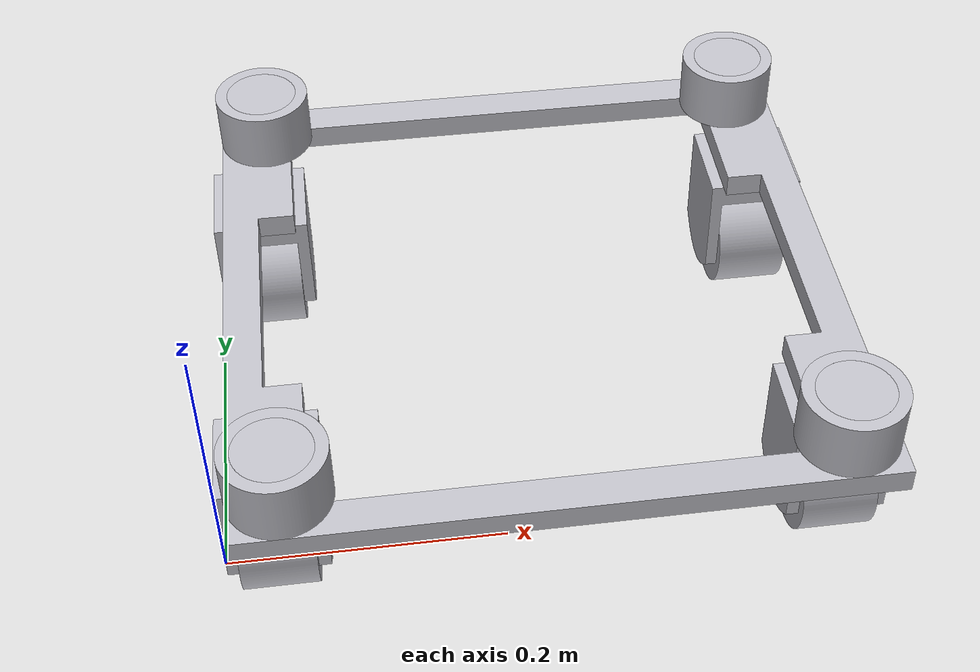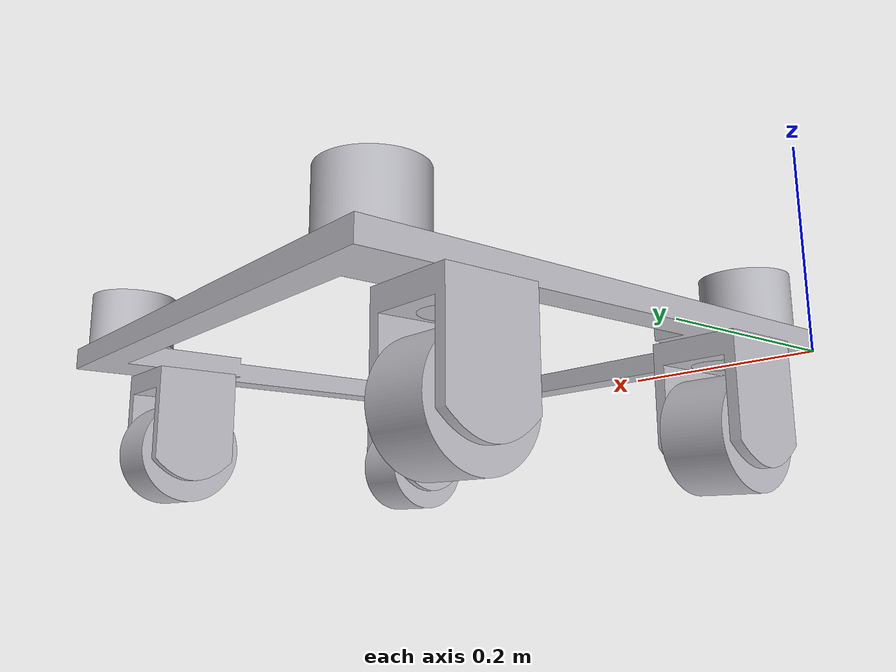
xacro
<?xml version="1.0" ?>
<robot name="(Unsaved)" xmlns:xacro="http://www.ros.org/wiki/xacro">

<xacro:include filename="$(find (Unsaved)_description)/urdf/materials.xacro" />
<xacro:include filename="$(find (Unsaved)_description)/urdf/(Unsaved).trans" />
<xacro:include filename="$(find (Unsaved)_description)/urdf/(Unsaved).gazebo" />
<link name="base_link">
  <inertial>
    <origin xyz="0.25000000000019557 0.24999999999999992 0.008002902975586378" rpy="0 0 0"/>
    <mass value="12.348675116534034"/>
    <inertia ixx="0.416714" iyy="0.483241" izz="0.898244" ixy="0.0" iyz="-0.0" ixz="0.0"/>
  </inertial>
  <visual>
    <origin xyz="0 0 0" rpy="0 0 0"/>
    <geometry>
      <mesh filename="package://(Unsaved)_description/meshes/base_link.stl" scale="0.001 0.001 0.001"/>
    </geometry>
    <material name="silver"/>
  </visual>
  <collision>
    <origin xyz="0 0 0" rpy="0 0 0"/>
    <geometry>
      <mesh filename="package://(Unsaved)_description/meshes/base_link.stl" scale="0.001 0.001 0.001"/>
    </geometry>
  </collision>
</link>

<link name="J1_1_1">
  <inertial>
    <origin xyz="7.810161864463261e-09 3.176972616925067e-08 -0.057975825376308965" rpy="0 0 0"/>
    <mass value="3.07492402154736"/>
    <inertia ixx="0.004522" iyy="0.00539" izz="0.003488" ixy="-0.0" iyz="0.0" ixz="0.0"/>
  </inertial>
  <visual>
    <origin xyz="-0.03 -0.1 -0.0" rpy="0 0 0"/>
    <geometry>
      <mesh filename="package://(Unsaved)_description/meshes/J1_1_1.stl" scale="0.001 0.001 0.001"/>
    </geometry>
    <material name="silver"/>
  </visual>
  <collision>
    <origin xyz="-0.03 -0.1 -0.0" rpy="0 0 0"/>
    <geometry>
      <mesh filename="package://(Unsaved)_description/meshes/J1_1_1.stl" scale="0.001 0.001 0.001"/>
    </geometry>
  </collision>
</link>

<link name="J2_1_1">
  <inertial>
    <origin xyz="7.810161864463261e-09 3.176903756729743e-08 -0.057975825376308965" rpy="0 0 0"/>
    <mass value="3.074924021547359"/>
    <inertia ixx="0.004522" iyy="0.00539" izz="0.003488" ixy="-0.0" iyz="0.0" ixz="0.0"/>
  </inertial>
  <visual>
    <origin xyz="-0.03 -0.4 -0.0" rpy="0 0 0"/>
    <geometry>
      <mesh filename="package://(Unsaved)_description/meshes/J2_1_1.stl" scale="0.001 0.001 0.001"/>
    </geometry>
    <material name="silver"/>
  </visual>
  <collision>
    <origin xyz="-0.03 -0.4 -0.0" rpy="0 0 0"/>
    <geometry>
      <mesh filename="package://(Unsaved)_description/meshes/J2_1_1.stl" scale="0.001 0.001 0.001"/>
    </geometry>
  </collision>
</link>

<link name="J3_1_1">
  <inertial>
    <origin xyz="7.809152047233425e-09 3.176972616925067e-08 -0.057975825376309006" rpy="0 0 0"/>
    <mass value="3.0749240215473637"/>
    <inertia ixx="0.004522" iyy="0.00539" izz="0.003488" ixy="-0.0" iyz="0.0" ixz="0.0"/>
  </inertial>
  <visual>
    <origin xyz="-0.47 -0.1 -0.0" rpy="0 0 0"/>
    <geometry>
      <mesh filename="package://(Unsaved)_description/meshes/J3_1_1.stl" scale="0.001 0.001 0.001"/>
    </geometry>
    <material name="silver"/>
  </visual>
  <collision>
    <origin xyz="-0.47 -0.1 -0.0" rpy="0 0 0"/>
    <geometry>
      <mesh filename="package://(Unsaved)_description/meshes/J3_1_1.stl" scale="0.001 0.001 0.001"/>
    </geometry>
  </collision>
</link>

<link name="J4_1_1">
  <inertial>
    <origin xyz="7.809151991722274e-09 3.176903756729743e-08 -0.057975825376308986" rpy="0 0 0"/>
    <mass value="3.074924021547362"/>
    <inertia ixx="0.004522" iyy="0.00539" izz="0.003488" ixy="-0.0" iyz="0.0" ixz="0.0"/>
  </inertial>
  <visual>
    <origin xyz="-0.47 -0.4 -0.0" rpy="0 0 0"/>
    <geometry>
      <mesh filename="package://(Unsaved)_description/meshes/J4_1_1.stl" scale="0.001 0.001 0.001"/>
    </geometry>
    <material name="silver"/>
  </visual>
  <collision>
    <origin xyz="-0.47 -0.4 -0.0" rpy="0 0 0"/>
    <geometry>
      <mesh filename="package://(Unsaved)_description/meshes/J4_1_1.stl" scale="0.001 0.001 0.001"/>
    </geometry>
  </collision>
</link>

<link name="W1_1">
  <inertial>
    <origin xyz="0.030000000000000013 0.0 2.7755575615628914e-17" rpy="0 0 0"/>
    <mass value="2.367504223745268"/>
    <inertia ixx="0.004025" iyy="0.002723" izz="0.002723" ixy="-0.0" iyz="0.0" ixz="-0.0"/>
  </inertial>
  <visual>
    <origin xyz="-0.0 -0.1 0.08" rpy="0 0 0"/>
    <geometry>
      <mesh filename="package://(Unsaved)_description/meshes/W1_1.stl" scale="0.001 0.001 0.001"/>
    </geometry>
    <material name="silver"/>
  </visual>
  <collision>
    <origin xyz="-0.0 -0.1 0.08" rpy="0 0 0"/>
    <geometry>
      <mesh filename="package://(Unsaved)_description/meshes/W1_1.stl" scale="0.001 0.001 0.001"/>
    </geometry>
  </collision>
</link>

<link name="W2_1">
  <inertial>
    <origin xyz="0.03 0.0 4.163336342344337e-17" rpy="0 0 0"/>
    <mass value="2.367504223745268"/>
    <inertia ixx="0.004025" iyy="0.002723" izz="0.002723" ixy="-0.0" iyz="-0.0" ixz="-0.0"/>
  </inertial>
  <visual>
    <origin xyz="-0.0 -0.4 0.08" rpy="0 0 0"/>
    <geometry>
      <mesh filename="package://(Unsaved)_description/meshes/W2_1.stl" scale="0.001 0.001 0.001"/>
    </geometry>
    <material name="silver"/>
  </visual>
  <collision>
    <origin xyz="-0.0 -0.4 0.08" rpy="0 0 0"/>
    <geometry>
      <mesh filename="package://(Unsaved)_description/meshes/W2_1.stl" scale="0.001 0.001 0.001"/>
    </geometry>
  </collision>
</link>

<link name="W3_1">
  <inertial>
    <origin xyz="0.02999999999999997 0.0 2.7755575615628914e-17" rpy="0 0 0"/>
    <mass value="2.367504223745268"/>
    <inertia ixx="0.004025" iyy="0.002723" izz="0.002723" ixy="0.0" iyz="0.0" ixz="-0.0"/>
  </inertial>
  <visual>
    <origin xyz="-0.44 -0.1 0.08" rpy="0 0 0"/>
    <geometry>
      <mesh filename="package://(Unsaved)_description/meshes/W3_1.stl" scale="0.001 0.001 0.001"/>
    </geometry>
    <material name="silver"/>
  </visual>
  <collision>
    <origin xyz="-0.44 -0.1 0.08" rpy="0 0 0"/>
    <geometry>
      <mesh filename="package://(Unsaved)_description/meshes/W3_1.stl" scale="0.001 0.001 0.001"/>
    </geometry>
  </collision>
</link>

<link name="W4_1">
  <inertial>
    <origin xyz="0.030000000000000138 0.0 2.7755575615628914e-17" rpy="0 0 0"/>
    <mass value="2.367504223745268"/>
    <inertia ixx="0.004025" iyy="0.002723" izz="0.002723" ixy="0.0" iyz="0.0" ixz="-0.0"/>
  </inertial>
  <visual>
    <origin xyz="-0.44 -0.4 0.08" rpy="0 0 0"/>
    <geometry>
      <mesh filename="package://(Unsaved)_description/meshes/W4_1.stl" scale="0.001 0.001 0.001"/>
    </geometry>
    <material name="silver"/>
  </visual>
  <collision>
    <origin xyz="-0.44 -0.4 0.08" rpy="0 0 0"/>
    <geometry>
      <mesh filename="package://(Unsaved)_description/meshes/W4_1.stl" scale="0.001 0.001 0.001"/>
    </geometry>
  </collision>
</link>

<link name="ACT1_1_1">
  <inertial>
    <origin xyz="0.040000000000000015 0.040000000000000015 0.02500000000000002" rpy="0 0 0"/>
    <mass value="0.8631525815737962"/>
    <inertia ixx="0.000719" iyy="0.000719" izz="0.001079" ixy="0.0" iyz="0.0" ixz="0.0"/>
  </inertial>
  <visual>
    <origin xyz="-0.0 -0.0 -0.02" rpy="0 0 0"/>
    <geometry>
      <mesh filename="package://(Unsaved)_description/meshes/ACT1_1_1.stl" scale="0.001 0.001 0.001"/>
    </geometry>
    <material name="silver"/>
  </visual>
  <collision>
    <origin xyz="-0.0 -0.0 -0.02" rpy="0 0 0"/>
    <geometry>
      <mesh filename="package://(Unsaved)_description/meshes/ACT1_1_1.stl" scale="0.001 0.001 0.001"/>
    </geometry>
  </collision>
</link>

<link name="ACT1_2_1">
  <inertial>
    <origin xyz="-0.039999999999999925 0.039999999999999994 0.025000000000000012" rpy="0 0 0"/>
    <mass value="0.863152581573797"/>
    <inertia ixx="0.000719" iyy="0.000719" izz="0.001079" ixy="0.0" iyz="-0.0" ixz="0.0"/>
  </inertial>
  <visual>
    <origin xyz="-0.5 -0.0 -0.02" rpy="0 0 0"/>
    <geometry>
      <mesh filename="package://(Unsaved)_description/meshes/ACT1_2_1.stl" scale="0.001 0.001 0.001"/>
    </geometry>
    <material name="silver"/>
  </visual>
  <collision>
    <origin xyz="-0.5 -0.0 -0.02" rpy="0 0 0"/>
    <geometry>
      <mesh filename="package://(Unsaved)_description/meshes/ACT1_2_1.stl" scale="0.001 0.001 0.001"/>
    </geometry>
  </collision>
</link>

<link name="ACT1_3_1">
  <inertial>
    <origin xyz="0.04000000000000001 -0.039999999999999925 0.025000000000000033" rpy="0 0 0"/>
    <mass value="0.8631525815737962"/>
    <inertia ixx="0.000719" iyy="0.000719" izz="0.001079" ixy="0.0" iyz="0.0" ixz="0.0"/>
  </inertial>
  <visual>
    <origin xyz="-0.0 -0.5 -0.02" rpy="0 0 0"/>
    <geometry>
      <mesh filename="package://(Unsaved)_description/meshes/ACT1_3_1.stl" scale="0.001 0.001 0.001"/>
    </geometry>
    <material name="silver"/>
  </visual>
  <collision>
    <origin xyz="-0.0 -0.5 -0.02" rpy="0 0 0"/>
    <geometry>
      <mesh filename="package://(Unsaved)_description/meshes/ACT1_3_1.stl" scale="0.001 0.001 0.001"/>
    </geometry>
  </collision>
</link>

<link name="ACT1_4_1">
  <inertial>
    <origin xyz="-0.0399999999999997 -0.03999999999999965 0.025000000000000053" rpy="0 0 0"/>
    <mass value="0.863152581573797"/>
    <inertia ixx="0.000719" iyy="0.000719" izz="0.001079" ixy="0.0" iyz="0.0" ixz="0.0"/>
  </inertial>
  <visual>
    <origin xyz="-0.5 -0.5 -0.02" rpy="0 0 0"/>
    <geometry>
      <mesh filename="package://(Unsaved)_description/meshes/ACT1_4_1.stl" scale="0.001 0.001 0.001"/>
    </geometry>
    <material name="silver"/>
  </visual>
  <collision>
    <origin xyz="-0.5 -0.5 -0.02" rpy="0 0 0"/>
    <geometry>
      <mesh filename="package://(Unsaved)_description/meshes/ACT1_4_1.stl" scale="0.001 0.001 0.001"/>
    </geometry>
  </collision>
</link>

<link name="ACT2_1_1">
  <inertial>
    <origin xyz="-6.938893903907228e-18 0.0 0.024999999999999998" rpy="0 0 0"/>
    <mass value="1.1097676048805951"/>
    <inertia ixx="0.000481" iyy="0.000481" izz="0.000499" ixy="0.0" iyz="-0.0" ixz="0.0"/>
  </inertial>
  <visual>
    <origin xyz="-0.04 -0.04 -0.02" rpy="0 0 0"/>
    <geometry>
      <mesh filename="package://(Unsaved)_description/meshes/ACT2_1_1.stl" scale="0.001 0.001 0.001"/>
    </geometry>
    <material name="silver"/>
  </visual>
  <collision>
    <origin xyz="-0.04 -0.04 -0.02" rpy="0 0 0"/>
    <geometry>
      <mesh filename="package://(Unsaved)_description/meshes/ACT2_1_1.stl" scale="0.001 0.001 0.001"/>
    </geometry>
  </collision>
</link>

<link name="ACT2_2_1">
  <inertial>
    <origin xyz="0.0 -2.0816681711721685e-17 0.024999999999999963" rpy="0 0 0"/>
    <mass value="1.1097676048805951"/>
    <inertia ixx="0.000481" iyy="0.000481" izz="0.000499" ixy="0.0" iyz="0.0" ixz="0.0"/>
  </inertial>
  <visual>
    <origin xyz="-0.46 -0.04 -0.02" rpy="0 0 0"/>
    <geometry>
      <mesh filename="package://(Unsaved)_description/meshes/ACT2_2_1.stl" scale="0.001 0.001 0.001"/>
    </geometry>
    <material name="silver"/>
  </visual>
  <collision>
    <origin xyz="-0.46 -0.04 -0.02" rpy="0 0 0"/>
    <geometry>
      <mesh filename="package://(Unsaved)_description/meshes/ACT2_2_1.stl" scale="0.001 0.001 0.001"/>
    </geometry>
  </collision>
</link>

<link name="ACT2_3_1">
  <inertial>
    <origin xyz="-6.938893903907228e-18 -1.1102230246251565e-16 0.024999999999999998" rpy="0 0 0"/>
    <mass value="1.1097676048805951"/>
    <inertia ixx="0.000481" iyy="0.000481" izz="0.000499" ixy="0.0" iyz="-0.0" ixz="0.0"/>
  </inertial>
  <visual>
    <origin xyz="-0.04 -0.46 -0.02" rpy="0 0 0"/>
    <geometry>
      <mesh filename="package://(Unsaved)_description/meshes/ACT2_3_1.stl" scale="0.001 0.001 0.001"/>
    </geometry>
    <material name="silver"/>
  </visual>
  <collision>
    <origin xyz="-0.04 -0.46 -0.02" rpy="0 0 0"/>
    <geometry>
      <mesh filename="package://(Unsaved)_description/meshes/ACT2_3_1.stl" scale="0.001 0.001 0.001"/>
    </geometry>
  </collision>
</link>

<link name="ACT2_4_1">
  <inertial>
    <origin xyz="-1.6653345369377348e-16 -1.6653345369377348e-16 0.02499999999999993" rpy="0 0 0"/>
    <mass value="1.1097676048805951"/>
    <inertia ixx="0.000481" iyy="0.000481" izz="0.000499" ixy="-0.0" iyz="-0.0" ixz="-0.0"/>
  </inertial>
  <visual>
    <origin xyz="-0.46 -0.46 -0.02" rpy="0 0 0"/>
    <geometry>
      <mesh filename="package://(Unsaved)_description/meshes/ACT2_4_1.stl" scale="0.001 0.001 0.001"/>
    </geometry>
    <material name="silver"/>
  </visual>
  <collision>
    <origin xyz="-0.46 -0.46 -0.02" rpy="0 0 0"/>
    <geometry>
      <mesh filename="package://(Unsaved)_description/meshes/ACT2_4_1.stl" scale="0.001 0.001 0.001"/>
    </geometry>
  </collision>
</link>

<joint name="J1" type="continuous">
  <origin xyz="0.03 0.1 0.0" rpy="0 0 0"/>
  <parent link="base_link"/>
  <child link="J1_1_1"/>
  <axis xyz="0.0 0.0 -1.0"/>
</joint>

<joint name="J2" type="continuous">
  <origin xyz="0.03 0.4 0.0" rpy="0 0 0"/>
  <parent link="base_link"/>
  <child link="J2_1_1"/>
  <axis xyz="0.0 0.0 -1.0"/>
</joint>

<joint name="J3" type="continuous">
  <origin xyz="0.47 0.1 0.0" rpy="0 0 0"/>
  <parent link="base_link"/>
  <child link="J3_1_1"/>
  <axis xyz="0.0 0.0 -1.0"/>
</joint>

<joint name="J4" type="continuous">
  <origin xyz="0.47 0.4 0.0" rpy="0 0 0"/>
  <parent link="base_link"/>
  <child link="J4_1_1"/>
  <axis xyz="0.0 0.0 -1.0"/>
</joint>

<joint name="W1" type="continuous">
  <origin xyz="-0.03 0.0 -0.08" rpy="0 0 0"/>
  <parent link="J1_1_1"/>
  <child link="W1_1"/>
  <axis xyz="1.0 -0.0 0.0"/>
</joint>

<joint name="W2" type="continuous">
  <origin xyz="-0.03 0.0 -0.08" rpy="0 0 0"/>
  <parent link="J2_1_1"/>
  <child link="W2_1"/>
  <axis xyz="1.0 -0.0 0.0"/>
</joint>

<joint name="W3" type="continuous">
  <origin xyz="-0.03 0.0 -0.08" rpy="0 0 0"/>
  <parent link="J3_1_1"/>
  <child link="W3_1"/>
  <axis xyz="1.0 -0.0 0.0"/>
</joint>

<joint name="W4" type="continuous">
  <origin xyz="-0.03 0.0 -0.08" rpy="0 0 0"/>
  <parent link="J4_1_1"/>
  <child link="W4_1"/>
  <axis xyz="1.0 -0.0 0.0"/>
</joint>

<joint name="ACTJ1 1" type="fixed">
  <origin xyz="0.0 0.0 0.02" rpy="0 0 0"/>
  <parent link="base_link"/>
  <child link="ACT1_1_1"/>
</joint>

<joint name="ACTJ1 2" type="fixed">
  <origin xyz="0.5 0.0 0.02" rpy="0 0 0"/>
  <parent link="base_link"/>
  <child link="ACT1_2_1"/>
</joint>

<joint name="ACTJ1 3" type="fixed">
  <origin xyz="0.0 0.5 0.02" rpy="0 0 0"/>
  <parent link="base_link"/>
  <child link="ACT1_3_1"/>
</joint>

<joint name="ACTJ1 4" type="fixed">
  <origin xyz="0.5 0.5 0.02" rpy="0 0 0"/>
  <parent link="base_link"/>
  <child link="ACT1_4_1"/>
</joint>

<joint name="ACTJ2 1" type="prismatic">
  <origin xyz="0.04 0.04 0.0" rpy="0 0 0"/>
  <parent link="ACT1_1_1"/>
  <child link="ACT2_1_1"/>
  <axis xyz="0.0 0.0 1.0"/>
  <limit upper="0.05" lower="0.0" effort="100" velocity="100"/>
</joint>

<joint name="ACTJ2 2" type="prismatic">
  <origin xyz="-0.04 0.04 0.0" rpy="0 0 0"/>
  <parent link="ACT1_2_1"/>
  <child link="ACT2_2_1"/>
  <axis xyz="0.0 0.0 1.0"/>
  <limit upper="0.05" lower="0.0" effort="100" velocity="100"/>
</joint>

<joint name="ACTJ2 3" type="prismatic">
  <origin xyz="0.04 -0.04 0.0" rpy="0 0 0"/>
  <parent link="ACT1_3_1"/>
  <child link="ACT2_3_1"/>
  <axis xyz="0.0 0.0 1.0"/>
  <limit upper="0.05" lower="0.0" effort="100" velocity="100"/>
</joint>

<joint name="ACTJ2 4" type="prismatic">
  <origin xyz="-0.04 -0.04 0.0" rpy="0 0 0"/>
  <parent link="ACT1_4_1"/>
  <child link="ACT2_4_1"/>
  <axis xyz="0.0 0.0 1.0"/>
  <limit upper="0.05" lower="0.0" effort="100" velocity="100"/>
</joint>

</robot>

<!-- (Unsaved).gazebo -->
<robot name="(Unsaved)" xmlns:xacro="http://www.ros.org/wiki/xacro" >

<xacro:property name="body_color" value="Gazebo/Silver" />

<gazebo>
  <plugin name="control" filename="libgazebo_ros_control.so"/>
</gazebo>
<gazebo reference="base_link">
  <material>${body_color}</material>
  <mu1>0.2</mu1>
  <mu2>0.2</mu2>
  <selfCollide>true</selfCollide>
  <gravity>true</gravity>
</gazebo>

<gazebo reference="J1_1_1">
  <material>${body_color}</material>
  <mu1>0.2</mu1>
  <mu2>0.2</mu2>
  <selfCollide>true</selfCollide>
</gazebo>

<gazebo reference="J2_1_1">
  <material>${body_color}</material>
  <mu1>0.2</mu1>
  <mu2>0.2</mu2>
  <selfCollide>true</selfCollide>
</gazebo>

<gazebo reference="J3_1_1">
  <material>${body_color}</material>
  <mu1>0.2</mu1>
  <mu2>0.2</mu2>
  <selfCollide>true</selfCollide>
</gazebo>

<gazebo reference="J4_1_1">
  <material>${body_color}</material>
  <mu1>0.2</mu1>
  <mu2>0.2</mu2>
  <selfCollide>true</selfCollide>
</gazebo>

<gazebo reference="W1_1">
  <material>${body_color}</material>
  <mu1>0.2</mu1>
  <mu2>0.2</mu2>
  <selfCollide>true</selfCollide>
</gazebo>

<gazebo reference="W2_1">
  <material>${body_color}</material>
  <mu1>0.2</mu1>
  <mu2>0.2</mu2>
  <selfCollide>true</selfCollide>
</gazebo>

<gazebo reference="W3_1">
  <material>${body_color}</material>
  <mu1>0.2</mu1>
  <mu2>0.2</mu2>
  <selfCollide>true</selfCollide>
</gazebo>

<gazebo reference="W4_1">
  <material>${body_color}</material>
  <mu1>0.2</mu1>
  <mu2>0.2</mu2>
  <selfCollide>true</selfCollide>
</gazebo>

<gazebo reference="ACT1_1_1">
  <material>${body_color}</material>
  <mu1>0.2</mu1>
  <mu2>0.2</mu2>
  <selfCollide>true</selfCollide>
</gazebo>

<gazebo reference="ACT1_2_1">
  <material>${body_color}</material>
  <mu1>0.2</mu1>
  <mu2>0.2</mu2>
  <selfCollide>true</selfCollide>
</gazebo>

<gazebo reference="ACT1_3_1">
  <material>${body_color}</material>
  <mu1>0.2</mu1>
  <mu2>0.2</mu2>
  <selfCollide>true</selfCollide>
</gazebo>

<gazebo reference="ACT1_4_1">
  <material>${body_color}</material>
  <mu1>0.2</mu1>
  <mu2>0.2</mu2>
  <selfCollide>true</selfCollide>
</gazebo>

<gazebo reference="ACT2_1_1">
  <material>${body_color}</material>
  <mu1>0.2</mu1>
  <mu2>0.2</mu2>
  <selfCollide>true</selfCollide>
</gazebo>

<gazebo reference="ACT2_2_1">
  <material>${body_color}</material>
  <mu1>0.2</mu1>
  <mu2>0.2</mu2>
  <selfCollide>true</selfCollide>
</gazebo>

<gazebo reference="ACT2_3_1">
  <material>${body_color}</material>
  <mu1>0.2</mu1>
  <mu2>0.2</mu2>
  <selfCollide>true</selfCollide>
</gazebo>

<gazebo reference="ACT2_4_1">
  <material>${body_color}</material>
  <mu1>0.2</mu1>
  <mu2>0.2</mu2>
  <selfCollide>true</selfCollide>
</gazebo>

</robot>
